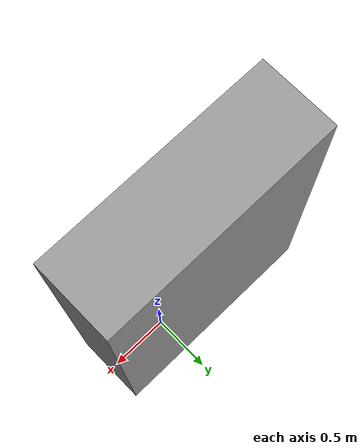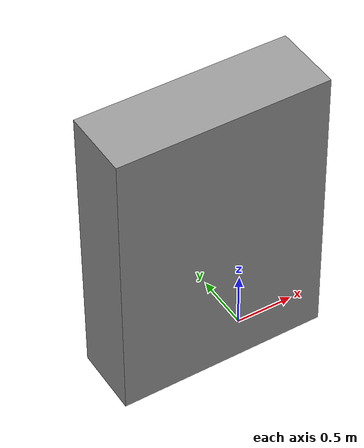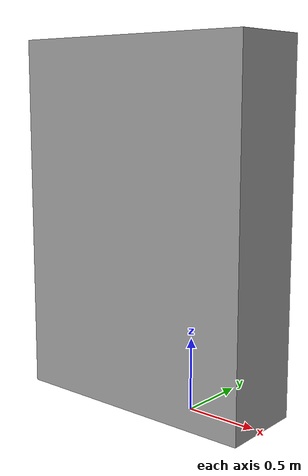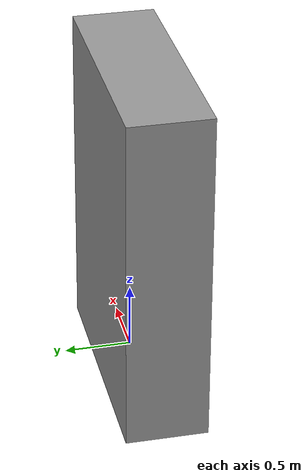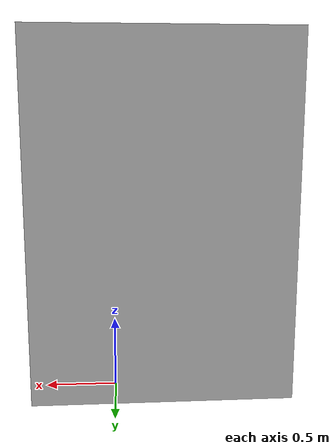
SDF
<?xml version='1.0'?>
<sdf version='1.6'>
  <model name='white_table'>
    <pose frame=''>-0.33 0 0 0 -0 0</pose>
    <link name='Wall_0'>
      <collision name='Wall_0_Collision'>
        <geometry>
          <box>
            <size>1.8 0.6 2.5</size>
          </box>
        </geometry>
        <pose frame=''>0 0 1.25 0 -0 0</pose>
      </collision>
      <visual name='Wall_0_Visual'>
        <pose frame=''>0 0 1.25 0 -0 0</pose>
        <geometry>
          <box>
            <size>1.8 0.6 2.5</size>
          </box>
        </geometry>
        <material>
          <script>
            <uri>file://media/materials/scripts/gazebo.material</uri>
            <name>Gazebo/Grey</name>
          </script>
          <ambient>1 1 1 1</ambient>
        </material>
      </visual>
      <pose frame=''>0 0 0 0 -0 0</pose>
    </link>
    <static>1</static>
  </model>
</sdf>
